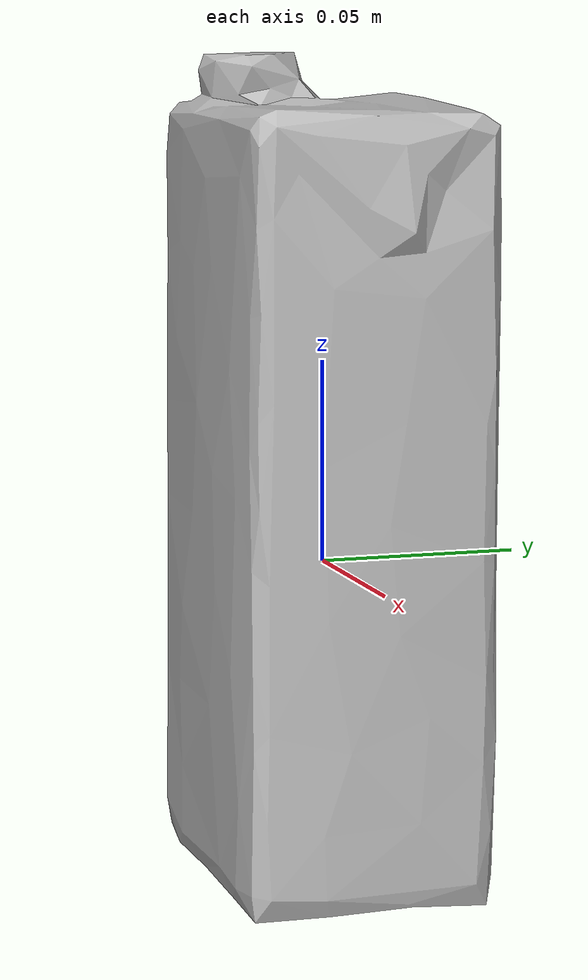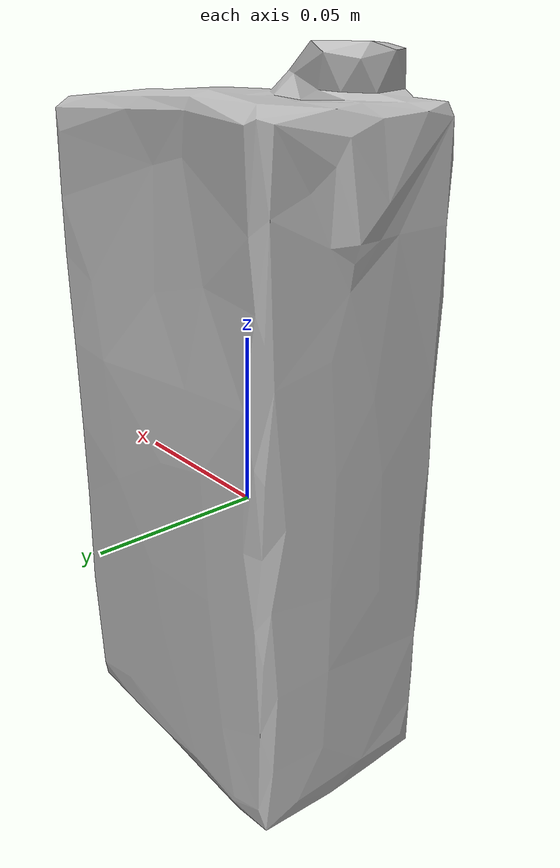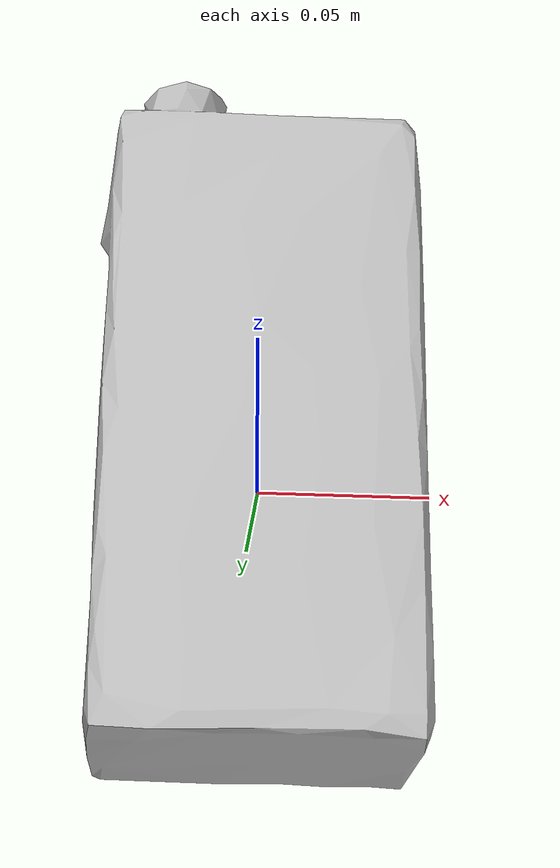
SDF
<?xml version="1.0" ?>
<sdf version="1.4">
<model name="JaMilch">
    <static>false</static>
    <link name="JaMilch2">
       <inertial>
          <inertia>
            <ixx>0.083</ixx>
            <ixy>0</ixy>
            <ixz>0</ixz>
            <iyy>0.083</iyy>
            <iyz>0</iyz>
            <izz>0.083</izz>
          </inertia>
          <mass>5.0</mass>
        </inertial>
        <gravity>true</gravity>
        <self_collide>true</self_collide>

        <collision name="collision">
           <pose>0 0 0 0 0 0</pose>
            <geometry>
              <mesh>
                <uri>model:///JaMilch/JaMilch.dae</uri>
              </mesh>
            </geometry>
           </collision>

           <visual name="visual">
             <geometry>
               <mesh><uri>model:///JaMilch/JaMilch.dae</uri></mesh>
             </geometry>
           </visual>

    </link>
  </model>
</sdf>
